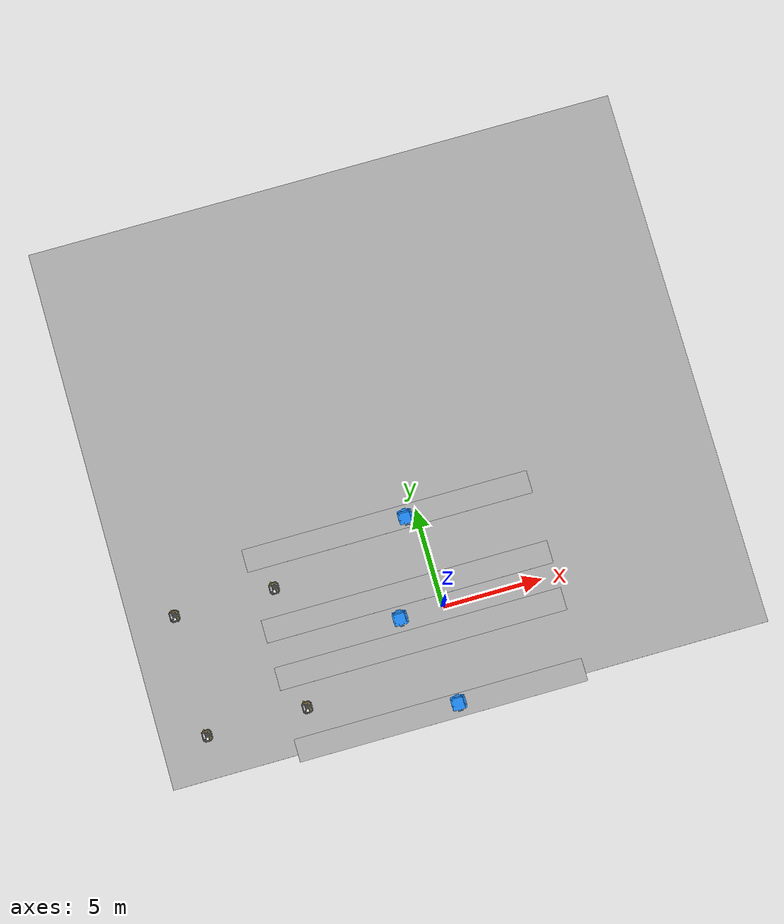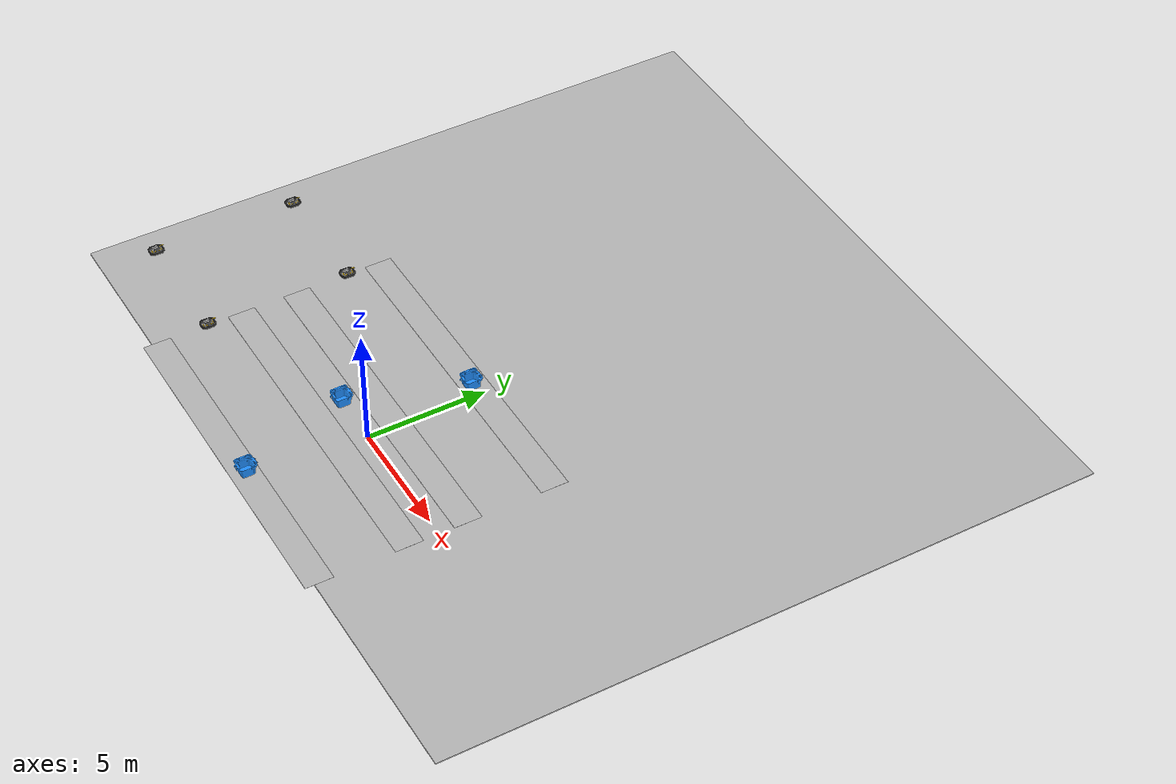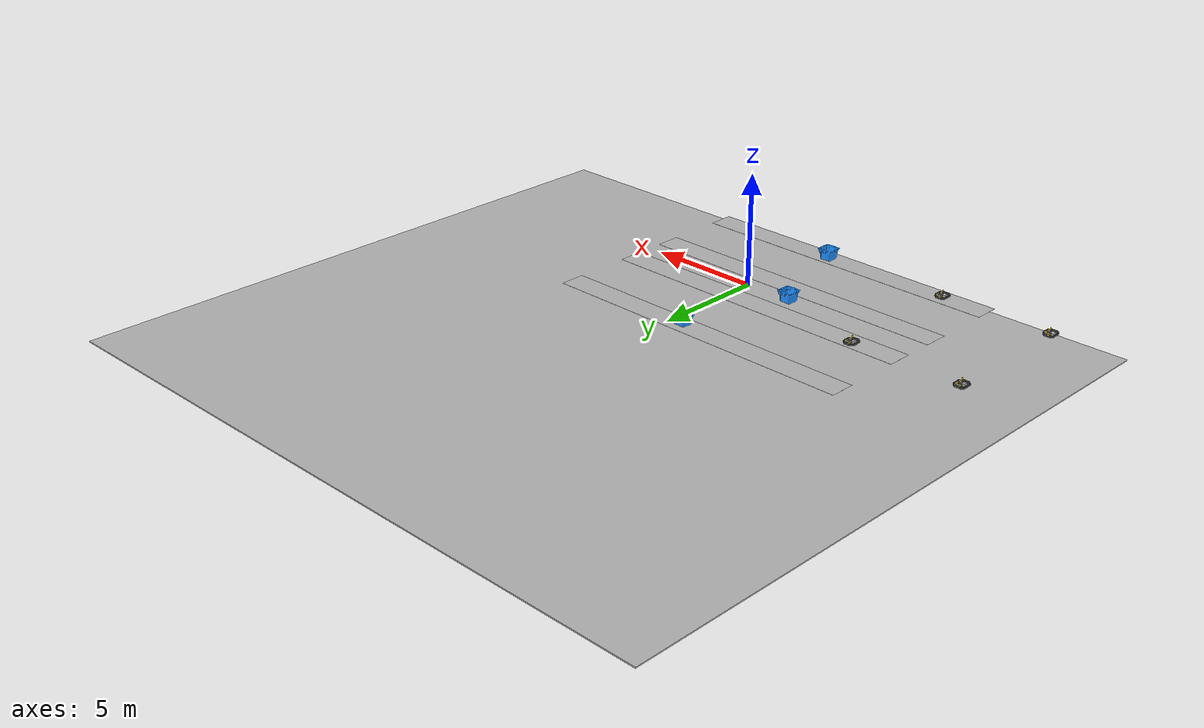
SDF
<sdf version="1.5">
 <world name="world">
  <scene>
   <shadows>0</shadows>
   <grid>0</grid>
   <origin_visual>0</origin_visual>
   <ambient>0.25 0.25 0.25 1</ambient>
   <background>0.6 0.6 0.6 1</background>
  </scene>
  <model name="lights_model">
   <static>1</static>
   <link name="lights_link">
    <light name="bin_light_1" type="point">
     <pose>-2.275 3 2 0 0 0</pose>
     <diffuse>0.4 0.4 0.4 1</diffuse>
     <specular>0.4 0.4 0.4 1</specular>
     <direction>0 0 -1</direction>
     <attenuation>
      <range>20</range>
      <constant>0.5</constant>
      <linear>0.01</linear>
      <quadratic>0.001</quadratic>
     </attenuation>
     <cast_shadows>0</cast_shadows>
    </light>
    <light name="bin_light_2" type="point">
     <pose>-2.275 -3 2 0 0 0</pose>
     <diffuse>0.4 0.4 0.4 1</diffuse>
     <specular>0.4 0.4 0.4 1</specular>
     <direction>0 0 -1</direction>
     <attenuation>
      <range>20</range>
      <constant>0.5</constant>
      <linear>0.01</linear>
      <quadratic>0.001</quadratic>
     </attenuation>
     <cast_shadows>0</cast_shadows>
    </light>
    <light name="conveyor_light_1" type="point">
     <pose>0 0 2 0 0 0</pose>
     <diffuse>0.4 0.4 0.4 1</diffuse>
     <specular>0.4 0.4 0.4 1</specular>
     <direction>0 0 -1</direction>
     <attenuation>
      <range>20</range>
      <constant>0.5</constant>
      <linear>0.01</linear>
      <quadratic>0.001</quadratic>
     </attenuation>
     <cast_shadows>0</cast_shadows>
    </light>
    <light name="assembly_light_1" type="point">
     <pose>-7.3 3 2 0 0 0</pose>
     <diffuse>0.4 0.4 0.4 1</diffuse>
     <specular>0.4 0.4 0.4 1</specular>
     <direction>0 0 -1</direction>
     <attenuation>
      <range>20</range>
      <constant>0.5</constant>
      <linear>0.01</linear>
      <quadratic>0.001</quadratic>
     </attenuation>
     <cast_shadows>0</cast_shadows>
    </light>
    <light name="assembly_light_2" type="point">
     <pose>-12.3 3 2 0 0 0</pose>
     <diffuse>0.4 0.4 0.4 1</diffuse>
     <specular>0.4 0.4 0.4 1</specular>
     <direction>0 0 -1</direction>
     <attenuation>
      <range>20</range>
      <constant>0.5</constant>
      <linear>0.01</linear>
      <quadratic>0.001</quadratic>
     </attenuation>
     <cast_shadows>0</cast_shadows>
    </light>
    <light name="assembly_light_3" type="point">
     <pose>-7.3 -3 2 0 0 0</pose>
     <diffuse>0.4 0.4 0.4 1</diffuse>
     <specular>0.4 0.4 0.4 1</specular>
     <direction>0 0 -1</direction>
     <attenuation>
      <range>20</range>
      <constant>0.5</constant>
      <linear>0.01</linear>
      <quadratic>0.001</quadratic>
     </attenuation>
     <cast_shadows>0</cast_shadows>
    </light>
    <light name="assembly_light_4" type="point">
     <pose>-12.3 -3 2 0 0 0</pose>
     <diffuse>0.4 0.4 0.4 1</diffuse>
     <specular>0.4 0.4 0.4 1</specular>
     <direction>0 0 -1</direction>
     <attenuation>
      <range>20</range>
      <constant>0.5</constant>
      <linear>0.01</linear>
      <quadratic>0.001</quadratic>
     </attenuation>
     <cast_shadows>0</cast_shadows>
    </light>
   </link>
   <plugin name="light_control" filename="liblight_malfunction_plugin.so">
    <nominal_brightness>80</nominal_brightness>
   </plugin>
  </model>
  <include><name>part_disposal_bin</name><uri>model://disposal_bin</uri><pose>-2.2 0 0 0 0 0</pose></include>
  <include>
   <name>conveyor_disposal_bin1</name>
   <uri>model://disposal_bin</uri>
   <pose>-0.6 -4.72 0 0 0 0</pose>
  </include>
  <include>
   <name>conveyor_disposal_bin2</name>
   <uri>model://disposal_bin</uri>
   <pose>-0.6 4.72 0 0 0 0</pose>
  </include>
  <include><name>workcell_floor</name><uri>model://floor</uri></include>
  <include><name>agv_path_1</name><uri>model://agv_path</uri><pose>-1.5 4.8 0 0 0 0</pose></include>
  <include><name>agv_path_2</name><uri>model://agv_path</uri><pose>-1.5 1.2 0 0 0 0</pose></include>
  <include><name>agv_path_3</name><uri>model://agv_path</uri><pose>-1.5 -1.2 0 0 0 0</pose></include>
  <include><name>agv_path_4</name><uri>model://agv_path</uri><pose>-1.5 -4.8 0 0 0 0</pose></include>
  <include>
   <name>assembly_insert_1</name>
   <pose>-7.7 3 1.011 0 0 0</pose>
   <uri>model://assembly_insert</uri>
  </include>
  <joint name="assembly_insert_1_joint" type="fixed">
   <parent>assembly_table_1::assembly_table_link</parent>
   <child>assembly_insert_1::insert_link</child>
  </joint>
  <include>
   <name>assembly_insert_2</name>
   <pose>-12.7 3 1.011 0 0 0</pose>
   <uri>model://assembly_insert</uri>
  </include>
  <include>
   <name>assembly_insert_3</name>
   <pose>-7.7 -3 1.011 0 0 0</pose>
   <uri>model://assembly_insert</uri>
  </include>
  <include>
   <name>assembly_insert_4</name>
   <pose>-12.7 -3 1.011 0 0 0</pose>
   <uri>model://assembly_insert</uri>
  </include>
 </world>
</sdf>

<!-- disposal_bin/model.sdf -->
<sdf version="1.6">
  <model name="disposal_bin">
    <static>true</static>
    <link name="disposal_bin">

      <collision name='collision'>
        <geometry>
            <mesh>
            <uri>model://disposal_bin/meshes/disposal_bin.stl</uri>
            </mesh>
          </geometry>
      </collision>
      <visual name="visual">
        <geometry>
          <mesh>
            <uri>model://disposal_bin/meshes/disposal_bin.stl</uri>
          </mesh>
        </geometry>
        <material>
          <ambient>0.12 0.56 1.0 1.0</ambient>
          <diffuse>0.12 0.56 1.0 1.0</diffuse>
        </material>
       </visual>

        <sensor type="contact" name="bumper">
          <update_rate>1</update_rate>
          <contact>
            <collision>collision</collision>
          </contact>
      </sensor>
    </link>

    <plugin name="disposal_bin" filename="libObjectDisposalPlugin.so">
      <ros>
      </ros>
      <link_name>disposal_bin</link_name>
      <publish_penalty>false</publish_penalty>
    </plugin>
  </model>
</sdf>

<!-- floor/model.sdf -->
<sdf version="1.11">
  <model name="floor">
    <static>true</static>
    <link name="floor">
      <collision name='collision'>
        <pose>4 4 -0.05 0 0 0</pose>
        <geometry>
          <box>
            <size> 8 8 0.1 </size>
          </box>
        </geometry>
      </collision>

      <visual name="floor_visual">
      <pose>0 0 0 0 0 -1.57</pose>
        <geometry>
          <mesh>
            <uri>model://floor/meshes/floor.glb</uri>
          </mesh>
        </geometry>
      </visual>

      <sensor name='collision_detector' type='contact'>
        <update_rate>30</update_rate>
          <contact>
            <collision>collision</collision>
          </contact>
      </sensor>

    </link>

    <plugin
      filename="libEntityDisposalPlugin.so"
      name="ariac_plugins::EntityDisposalPlugin">
      <contact_link>floor</contact_link>
    </plugin>

  </model>
</sdf>

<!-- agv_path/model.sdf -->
<sdf version='1.6'>
  <model name='agv_path_2021'>
    <static>true</static>
    <link name="link">
      <pose>0 0 0 0 0 0</pose>
      <visual name="visual">
        <geometry>
          <box>
            <size>14.5 1.145870 0.009</size>
          </box>
        </geometry>
        <material>
          <script>
            <uri>model://agv_path/materials/scripts</uri>
            <uri>model://agv_path/materials/textures</uri>
            <name>AGVPathTexture</name>
          </script>
        </material>
      </visual>

    </link>
  </model>
</sdf>

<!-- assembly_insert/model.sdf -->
<sdf version="1.6">
  <model name="insert">
    <static>true</static>
    <allow_auto_disable>false</allow_auto_disable>

    <kinematic>0</kinematic>
    <inertial>
      <mass>20</mass>
      <inertia>
        <ixx>0.0009</ixx>
        <ixy>0</ixy>
        <ixz>0</ixz>
        <iyy>0.0009</iyy>
        <iyz>0</iyz>
        <izz>0.0012</izz>
      </inertia>
    </inertial>

    <link name="insert_link">
      <visual name="base">
        <geometry>
          <mesh>
            <uri>model://assembly_insert/meshes/insert_base.stl</uri>
          </mesh>
        </geometry>
        <material>
          <ambient>0.25 0.25 0.25 1.0</ambient>
          <diffuse>0.25 0.25 0.25 1.0</diffuse>
        </material>
      </visual>

      <visual name="mounts">
        <geometry>
          <mesh>
            <uri>model://assembly_insert/meshes/mounts.stl</uri>
          </mesh>
        </geometry>
        <material>
          <ambient>0.8 0.8 0.8 1.0</ambient>
          <diffuse>0.8 0.8 0.8 1.0</diffuse>
        </material>
      </visual>

      <visual name="hardware">
        <geometry>
          <mesh>
            <uri>model://assembly_insert/meshes/hardware.stl</uri>
          </mesh>
        </geometry>
        <material>
          <ambient>0.35 0.35 0.35 1.0</ambient>
          <diffuse>0.35 0.35 0.35 1.0</diffuse>
        </material>
      </visual>

      <visual name="pipe_1">
        <geometry>
          <mesh>
            <uri>model://assembly_insert/meshes/pipe_1.stl</uri>
          </mesh>
        </geometry>
        <material>
          <ambient>1.0 0.82 0.10 1.0</ambient>
          <diffuse>1.0 0.82 0.10 1.0</diffuse>
        </material>
      </visual>

      <visual name="pipe_2">
        <geometry>
          <mesh>
            <uri>model://assembly_insert/meshes/pipe_2.stl</uri>
          </mesh>
        </geometry>
        <material>
          <ambient>1.0 0.82 0.10 1.0</ambient>
          <diffuse>1.0 0.82 0.10 1.0</diffuse>
        </material>
      </visual>

      <visual name="screen">
        <geometry>
          <mesh>
            <uri>model://assembly_insert/meshes/screen.stl</uri>
          </mesh>
        </geometry>
        <material>
          <ambient>1.0 1.0 1.0 1.0</ambient>
          <diffuse>1.0 1.0 1.0 1.0</diffuse>
        </material>
      </visual>

      <collision name="base_collision">
        <geometry>
          <mesh>
            <uri>model://assembly_insert/meshes/insert_collision.stl</uri>
          </mesh>
        </geometry>
        <surface>
          <contact>
            <ode>
              <max_vel>0.0</max_vel>
              <min_depth>0.001</min_depth>
            </ode>
          </contact>
        </surface>
      </collision>
    </link>

    <link name="regulator_contact">
      <pose frame=''>0 0 0 0 0 0</pose>
      <collision name="regulator_contact">
        <geometry>
          <mesh>
            <uri>model://assembly_insert/meshes/regulator_contact.stl</uri>
          </mesh>
        </geometry>
        <surface>
          <contact>
            <ode>
              <max_vel>0.0</max_vel>
              <min_depth>0.001</min_depth>
            </ode>
          </contact>
        </surface>
      </collision>

      <sensor type="contact" name="regulator_contact_sensor">
        <update_rate>10</update_rate>
        <contact>
          <collision>regulator_contact</collision>
        </contact>
      </sensor>
    </link>

    <link name="battery_contact">
      <collision name="battery_contact">
        <geometry>
          <mesh>
            <uri>model://assembly_insert/meshes/battery_contact.stl</uri>
          </mesh>
        </geometry>
        <surface>
          <contact>
            <ode>
              <max_vel>0.0</max_vel>
              <min_depth>0.001</min_depth>
            </ode>
          </contact>
        </surface>
      </collision>

      <sensor type="contact" name="battery_contact_sensor">
        <update_rate>10</update_rate>
        <contact>
          <collision>battery_contact</collision>
        </contact>
      </sensor>
    </link>

    <link name="pump_contact">
      <pose>0 0 .002 0 0 0</pose>
      <collision name="pump_contact">
        <geometry>
          <mesh>
            <uri>model://assembly_insert/meshes/pump_contact.stl</uri>
          </mesh>
        </geometry>
        <surface>
          <contact>
            <ode>
              <max_vel>0.0</max_vel>
              <min_depth>0.001</min_depth>
            </ode>
          </contact>
        </surface>
      </collision>

      <sensor type="contact" name="pump_contact_sensor">
        <update_rate>10</update_rate>
        <contact>
          <collision>pump_contact</collision>
        </contact>
      </sensor>
    </link>

    <link name="sensor_contact">
      <collision name="sensor_contact">
        <geometry>
          <mesh>
            <uri>model://assembly_insert/meshes/sensor_contact.stl</uri>
          </mesh>
        </geometry>
        <surface>
          <contact>
            <ode>
              <max_vel>0.0</max_vel>
              <min_depth>0.001</min_depth>
            </ode>
          </contact>
        </surface>
      </collision>

      <sensor type="contact" name="sensor_contact_sensor">
        <update_rate>10</update_rate>
        <contact>
          <collision>sensor_contact</collision>
        </contact>
      </sensor>
    </link>

    <plugin filename="libassembly_lock_plugin.so" name="assembly_lock_pump">
      <assembly_part_type>pump</assembly_part_type>
    </plugin>
    <plugin filename="libassembly_lock_plugin.so" name="assembly_lock_regulator">
      <assembly_part_type>regulator</assembly_part_type>
    </plugin>
    <plugin filename="libassembly_lock_plugin.so" name="assembly_lock_sensor">
      <assembly_part_type>sensor</assembly_part_type>
    </plugin>
    <plugin filename="libassembly_lock_plugin.so" name="assembly_lock_battery">
      <assembly_part_type>battery</assembly_part_type>
    </plugin>
    <plugin filename="libassembly_state_publisher.so" name="assembly_state_publisher">
      <ros></ros>
    </plugin>
  </model>
</sdf>
